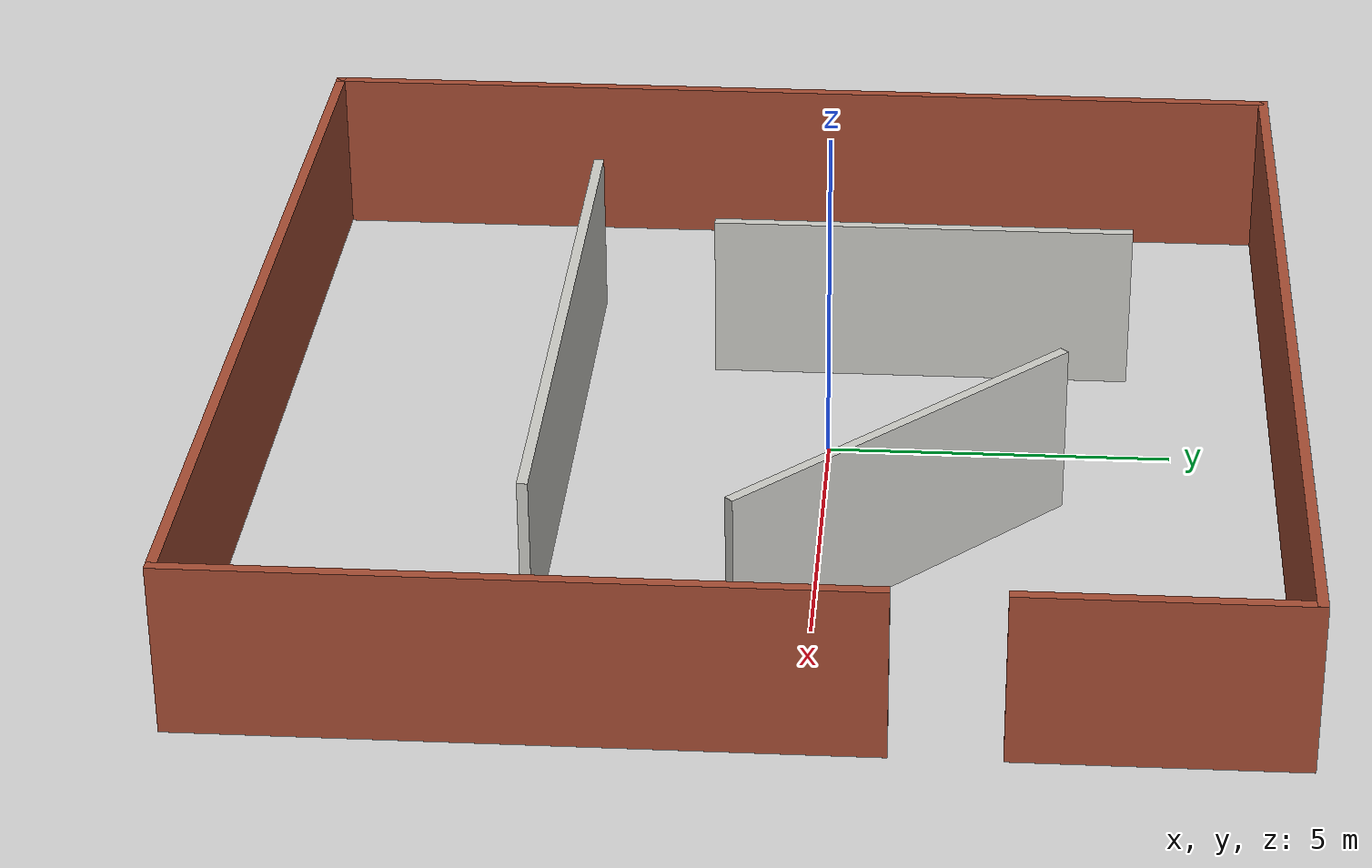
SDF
<?xml version='1.0'?>
<sdf version='1.6'>
  <model name='room'>
    <pose frame=''>0.352197 -0.855112 0 0 -0 0</pose>
    <link name='Wall_22'>
      <collision name='Wall_22_Collision'>
        <geometry>
          <box>
            <size>15 0.15 2.5</size>
          </box>
        </geometry>
        <pose frame=''>0 0 1.25 0 -0 0</pose>
      </collision>
      <visual name='Wall_22_Visual'>
        <pose frame=''>0 0 1.25 0 -0 0</pose>
        <geometry>
          <box>
            <size>15 0.15 2.5</size>
          </box>
        </geometry>
        <material>
          <script>
            <uri>file://media/materials/scripts/gazebo.material</uri>
            <name>Gazebo/Bricks</name>
          </script>
          <ambient>1 1 1 1</ambient>
        </material>
      </visual>
      <pose frame=''>-7.55 0 0 0 0 -1.5708</pose>
    </link>
    <link name='Wall_23'>
      <collision name='Wall_23_Collision'>
        <geometry>
          <box>
            <size>15.25 0.15 2.5</size>
          </box>
        </geometry>
        <pose frame=''>0 0 1.25 0 -0 0</pose>
      </collision>
      <visual name='Wall_23_Visual'>
        <pose frame=''>0 0 1.25 0 -0 0</pose>
        <geometry>
          <box>
            <size>15.25 0.15 2.5</size>
          </box>
        </geometry>
        <material>
          <script>
            <uri>file://media/materials/scripts/gazebo.material</uri>
            <name>Gazebo/Bricks</name>
          </script>
          <ambient>1 1 1 1</ambient>
        </material>
      </visual>
      <pose frame=''>0 -7.425 0 0 -0 0</pose>
    </link>
    <link name='Wall_24'>
      <collision name='Wall_24_Collision'>
        <geometry>
          <box>
            <size>9.5 0.15 2.5</size>
          </box>
        </geometry>
        <pose frame=''>0 0 1.25 0 -0 0</pose>
      </collision>
      <visual name='Wall_24_Visual'>
        <pose frame=''>0 0 1.25 0 -0 0</pose>
        <geometry>
          <box>
            <size>9.5 0.15 2.5</size>
          </box>
        </geometry>
        <material>
          <script>
            <uri>file://media/materials/scripts/gazebo.material</uri>
            <name>Gazebo/Bricks</name>
          </script>
          <ambient>1 1 1 1</ambient>
        </material>
      </visual>
      <pose frame=''>7.55 -2.75 0 0 -0 1.5708</pose>
    </link>
    <link name='Wall_26'>
      <collision name='Wall_26_Collision'>
        <geometry>
          <box>
            <size>15.25 0.15 2.5</size>
          </box>
        </geometry>
        <pose frame=''>0 0 1.25 0 -0 0</pose>
      </collision>
      <visual name='Wall_26_Visual'>
        <pose frame=''>0 0 1.25 0 -0 0</pose>
        <geometry>
          <box>
            <size>15.25 0.15 2.5</size>
          </box>
        </geometry>
        <material>
          <script>
            <uri>file://media/materials/scripts/gazebo.material</uri>
            <name>Gazebo/Bricks</name>
          </script>
          <ambient>1 1 1 1</ambient>
        </material>
      </visual>
      <pose frame=''>0 7.425 0 0 -0 0</pose>
    </link>
    <link name='Wall_27'>
      <collision name='Wall_27_Collision'>
        <geometry>
          <box>
            <size>4 0.15 2.5</size>
          </box>
        </geometry>
        <pose frame=''>0 0 1.25 0 -0 0</pose>
      </collision>
      <visual name='Wall_27_Visual'>
        <pose frame=''>0 0 1.25 0 -0 0</pose>
        <geometry>
          <box>
            <size>4 0.15 2.5</size>
          </box>
        </geometry>
        <material>
          <script>
            <uri>file://media/materials/scripts/gazebo.material</uri>
            <name>Gazebo/Bricks</name>
          </script>
          <ambient>1 1 1 1</ambient>
        </material>
      </visual>
      <pose frame=''>7.55 5.5 0 0 0 -1.5708</pose>
    </link>
    <link name='Wall_29'>
      <collision name='Wall_29_Collision'>
        <geometry>
          <box>
            <size>10 0.15 2.5</size>
          </box>
        </geometry>
        <pose frame=''>0 0 1.25 0 -0 0</pose>
      </collision>
      <visual name='Wall_29_Visual'>
        <pose frame=''>0 0 1.25 0 -0 0</pose>
        <geometry>
          <box>
            <size>10 0.15 2.5</size>
          </box>
        </geometry>
        <material>
          <script>
            <uri>file://media/materials/scripts/gazebo.material</uri>
            <name>Gazebo/CeilingTiled</name>
          </script>
          <ambient>1 1 1 1</ambient>
        </material>
      </visual>
      <pose frame=''>0.205403 -2.94874 0 0 -0 0</pose>
    </link>
    <link name='Wall_31'>
      <collision name='Wall_31_Collision'>
        <geometry>
          <box>
            <size>6.25 0.15 2.5</size>
          </box>
        </geometry>
        <pose frame=''>0 0 1.25 0 -0 0</pose>
      </collision>
      <visual name='Wall_31_Visual'>
        <pose frame=''>0 0 1.25 0 -0 0</pose>
        <geometry>
          <box>
            <size>6.25 0.15 2.5</size>
          </box>
        </geometry>
        <material>
          <script>
            <uri>file://media/materials/scripts/gazebo.material</uri>
            <name>Gazebo/CeilingTiled</name>
          </script>
          <ambient>1 1 1 1</ambient>
        </material>
      </visual>
      <pose frame=''>-2.77773 2.13283 0 0 0 -1.5708</pose>
    </link>
    <link name='Wall_34'>
      <collision name='Wall_34_Collision'>
        <geometry>
          <box>
            <size>6.25 0.15 2.5</size>
          </box>
        </geometry>
        <pose frame=''>0 0 1.25 0 -0 0</pose>
      </collision>
      <visual name='Wall_34_Visual'>
        <pose frame=''>0 0 1.25 0 -0 0</pose>
        <geometry>
          <box>
            <size>6.25 0.15 2.5</size>
          </box>
        </geometry>
        <material>
          <script>
            <uri>file://media/materials/scripts/gazebo.material</uri>
            <name>Gazebo/CeilingTiled</name>
          </script>
          <ambient>1 1 1 1</ambient>
        </material>
      </visual>
      <pose frame=''>3.22223 2.01477 0 0 0 -0.785398</pose>
    </link>
    <static>1</static>
  </model>
</sdf>
